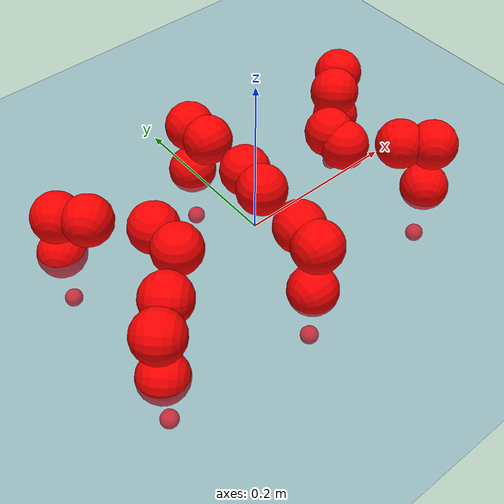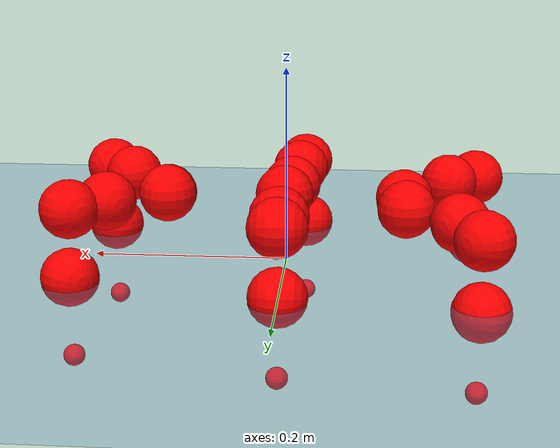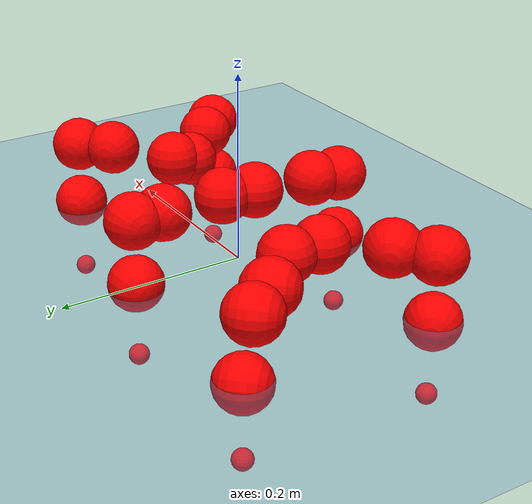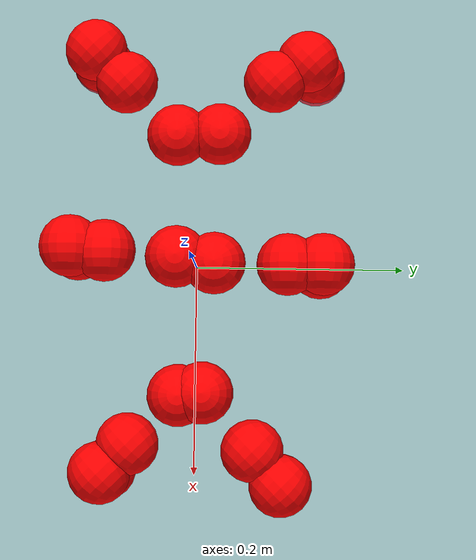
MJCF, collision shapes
<mujoco model="Golem">
  <compiler angle="radian" assetdir="assets" balanceinertia="true" inertiafromgeom="false"/>

  <option timestep="0.005" density="1.2" viscosity="2e-05"/>

  <size nkey="1"/>

  <visual>
    <quality shadowsize="8192"/>
    <map shadowclip="0.5"/>
  </visual>

  <default>
    <default class="/">
      <joint armature="0.01" damping="0.01" frictionloss="0.01"/>
      <geom contype="0" conaffinity="0" group="1" solref="-1000 -80"/>
      <site size="0.01 0.005 0.005" group="5"/>
      <general forcelimited="true" biastype="affine" gainprm="25" biasprm="0 -25 -0.5"/>
      <default class="visual">
        <geom type="mesh" group="2"/>
      </default>
      <default class="collision">
        <geom group="3"/>
      </default>
      <default class="foot">
        <geom size="0.01 0 0" condim="6" group="4" priority="1" solimp="0.015 1 0.01"/>
      </default>
      <default class="reward_collision_sphere">
        <geom group="5" rgba="1 0 0 1"/>
      </default>
    </default>
  </default>

  <asset>
    <texture type="skybox" colorspace="auto" name="//unnamed_texture_0" builtin="gradient" rgb1="0.95 0.95 0.95" rgb2="0.95 0.95 0.95" width="100" height="600"/>
    <texture type="2d" colorspace="auto" name="texplane" builtin="checker" rgb1="0.345 0.575 0.748" rgb2="0.345 0.575 0.748" markrgb="1 1 1" width="512" height="512"/>
    <material name="MatPlane" class="/" texture="texplane" texuniform="true" texrepeat="2 2" specular="0.9"/>
    <mesh name="body" class="/" file="body.stl" scale="0.001 0.001 0.001"/>
    <mesh name="coxa" class="/" file="coxa.stl" scale="0.001 0.001 0.001"/>
    <mesh name="femur" class="/" file="femur.stl" scale="0.001 0.001 0.001"/>
    <mesh name="tibia" class="/" file="tibia.stl" scale="0.001 0.001 0.001"/>
    <mesh name="tarsus" class="/" file="tarsus.stl" scale="0.001 0.001 0.001"/>
  </asset>

  <worldbody>
    <geom name="floor" class="/" size="100 100 0.125" type="plane" group="0" material="MatPlane"/>
    <light name="toplight_shadow" class="/" pos="0 0 5" dir="0.0990148 0.0990148 -0.990148" type="directional" ambient="0.04 0.04 0.04" diffuse="0.55 0.55 0.55" specular="0.12 0.12 0.12"/>
    <light name="toplight_fill" class="/" pos="0 0 5" dir="0.0990148 0.0990148 -0.990148" type="directional" castshadow="false" ambient="0.04 0.04 0.04" diffuse="0.3 0.3 0.3" specular="0.08 0.08 0.08"/>
    <body name="trunk" pos="-0.000777501 0.000732067 0.00257567" quat="0.999997 -0.000301825 -0.0023283 -0.000607628">
      <inertial pos="0.00289721 -0.00106368 -0.00372115" quat="0.999998 -0.00115146 -0.00152759 -0.000461271" mass="1.361" diaginertia="0.00293614 5.41468e-05 0.0134432"/>
      <joint name="//unnamed_joint_0" type="free"/>
      <geom name="//unnamed_geom_1" class="/" pos="0 0 0.0673438" quat="1 0 0 0" type="mesh" rgba="0.9 0.9 0.9 1" mesh="body"/>
      <site name="imu" class="/" pos="0.0806768 -0.00219353 0.101508" size="0.00726432"/>
      <camera name="track" class="/" pos="0 -0.701799 0" quat="0.707107 0.707107 0 0" mode="trackcom"/>
      <camera name="ego_camera" class="/" pos="0.1009 0 0.105225" quat="-0.5 -0.5 0.5 0.5"/>
      <body name="coxa_RR" pos="-0.135598 -0.0350391 0.0609781" quat="0.381467 0.00188973 -0.000476036 -0.924381">
        <inertial pos="-0.000210671 -2.39665e-05 -0.00150107" quat="0.999999 0.00103521 0.000149635 -0.000193509" mass="0.0725601" diaginertia="0.00277922 5.18869e-05 0.0125691"/>
        <joint name="coxa_joint_RR" class="/" pos="0 0 0" axis="0.00719238 -0.0116236 -0.999907" stiffness="0.00208885" range="-3.10751 3.20567" armature="0.00727539" damping="0" frictionloss="0.0073851"/>
        <geom name="//unnamed_geom_2" class="/" type="mesh" rgba="0.2 0.2 0.2 1" mesh="coxa"/>
        <geom name="//unnamed_geom_3" class="reward_collision_sphere" size="0.0290573" pos="-0.0232845 0 0"/>
        <body name="femur_RR" pos="0.0451082 0.000181492 0.00448996" quat="0.499264 -0.500448 0.499754 0.500533">
          <inertial pos="-0.00111716 0.000168196 -0.00251704" quat="0.999977 -3.4185e-05 -0.00621546 -0.00264628" mass="0.0766499" diaginertia="0.00283267 5.32274e-05 0.0123884"/>
          <joint name="femur_joint_RR" class="/" pos="0 0 0" axis="0.00206359 -0.00573164 -0.999981" range="-3.20475 3.14938" armature="0.00831361" damping="0.00492265" frictionloss="0.00640058"/>
          <geom name="//unnamed_geom_4" class="/" type="mesh" rgba="0.9 0.9 0.9 1" mesh="femur"/>
          <geom name="//unnamed_geom_5" class="reward_collision_sphere" size="0.0290573"/>
          <body name="tibia_RR" pos="0.00229437 -0.0426501 -0.000825837" quat="0.000257484 1 0.000276215 0.000310882">
            <inertial pos="-0.00178912 0.00059838 0.00140928" quat="0.999973 -0.00417181 -0.0023632 -0.00553935" mass="0.0747246" diaginertia="0.00273034 5.36457e-05 0.0132416"/>
            <joint name="tibia_joint_RR" class="/" pos="0 0 0" axis="0.0178917 -0.00121468 0.999839" stiffness="0.0044069" range="-3.21248 3.15217" armature="0.00788625" damping="0.0156354" frictionloss="0.00639272"/>
            <geom name="//unnamed_geom_6" class="/" type="mesh" rgba="0.2 0.2 0.2 1" mesh="tibia"/>
            <geom name="//unnamed_geom_7" class="reward_collision_sphere" size="0.0290573"/>
            <body name="tarsus_RR" pos="0.0705278 0.000550072 0.000981345" quat="0.999999 0.000535969 -0.000481816 0.000766709">
              <inertial pos="0.0490507 -0.00061946 0.00264751" quat="0.499743 0.50049 0.499631 0.500135" mass="0.0750755" diaginertia="0.00288095 5.34088e-05 0.0130416"/>
              <joint name="tarsus_joint_RR" class="/" pos="0 0 0" axis="-0.00810286 0.00714796 0.999942" range="-3.16581 3.09206" armature="0.00628966" damping="0.0076317" frictionloss="0.00818038"/>
              <geom name="//unnamed_geom_8" class="/" type="mesh" rgba="0.9 0.9 0.9 1" mesh="tarsus"/>
              <geom name="foot_1" class="foot" size="0.00774068" pos="0.086929 0 0" quat="0 -0.707107 0 0.707107"/>
              <geom name="//unnamed_geom_10" class="reward_collision_sphere" size="0.0290573"/>
              <geom name="//unnamed_geom_11" class="reward_collision_sphere" size="0.0108965" pos="0.0834363 0 0"/>
              <site name="foot_1" class="foot" pos="0.086929 0 0" quat="0 -0.707107 0 0.707107" size="0.00726432"/>
            </body>
          </body>
        </body>
      </body>
      <body name="coxa_RM" pos="-0.00405386 -0.0410228 0.0730132" quat="0.706574 0.000609798 -0.00126006 -0.707638">
        <inertial pos="0.00140132 0.00266162 0.00198632" quat="0.999973 0.00600024 -0.00140016 0.00395546" mass="0.0767284" diaginertia="0.00285838 5.10677e-05 0.0124906"/>
        <joint name="coxa_joint_RM" class="/" pos="0 0 0" axis="-0.00635206 -0.0120039 -0.999908" range="-3.12576 3.09904" armature="0.00574419" damping="0.0256785" frictionloss="0.00755181"/>
        <geom name="//unnamed_geom_12" class="/" type="mesh" rgba="0.2 0.2 0.2 1" mesh="coxa"/>
        <geom name="//unnamed_geom_13" class="reward_collision_sphere" size="0.0290573" pos="-0.0232845 0 0"/>
        <body name="femur_RM" pos="0.0432637 -0.00456143 -0.000316482" quat="0.500177 -0.499868 0.50002 0.499935">
          <inertial pos="-4.25723e-05 0.00179583 0.00134604" quat="0.999917 0.00544782 -0.000652962 -0.0116653" mass="0.0770586" diaginertia="0.00291682 5.13588e-05 0.0124635"/>
          <joint name="femur_joint_RM" class="/" pos="0 0 0" axis="0.0109048 -2.62219e-05 -0.999941" range="-3.16195 3.13303" armature="0.00676668" damping="0.00625977" frictionloss="0.00711341"/>
          <geom name="//unnamed_geom_14" class="/" type="mesh" rgba="0.9 0.9 0.9 1" mesh="femur"/>
          <geom name="//unnamed_geom_15" class="reward_collision_sphere" size="0.0290573"/>
          <body name="tibia_RM" pos="0.000526712 -0.0320836 -0.00393499" quat="0.00106209 0.999999 0.000193366 -0.000360075">
            <inertial pos="0.00196559 -0.00286999 0.00282758" quat="0.999933 0.00450738 -0.00525962 -0.00930131" mass="0.0758376" diaginertia="0.00271014 5.39552e-05 0.0125843"/>
            <joint name="tibia_joint_RM" class="/" pos="0 0 0" axis="-0.00252979 -0.00348714 0.999991" stiffness="0.00152217" range="-3.08929 3.10567" armature="0.00623776" damping="0.0116432" frictionloss="0.00565284"/>
            <geom name="//unnamed_geom_16" class="/" type="mesh" rgba="0.2 0.2 0.2 1" mesh="tibia"/>
            <geom name="//unnamed_geom_17" class="reward_collision_sphere" size="0.0290573"/>
            <body name="tarsus_RM" pos="0.0703855 -0.00051641 0.00155775" quat="1 -0.000106924 0.000161011 -0.000167558">
              <inertial pos="0.0464217 -0.0014871 -0.00112177" quat="0.498349 0.501554 0.500636 0.499455" mass="0.0793598" diaginertia="0.00286819 5.44892e-05 0.0129776"/>
              <joint name="tarsus_joint_RM" class="/" pos="0 0 0" axis="-0.00176898 -5.28194e-05 0.999998" range="-3.21338 3.16122" armature="0.00542923" damping="0.00162538" frictionloss="0.00757226"/>
              <geom name="//unnamed_geom_18" class="/" type="mesh" rgba="0.9 0.9 0.9 1" mesh="tarsus"/>
              <geom name="foot_2" class="foot" size="0.00635093" pos="0.086929 0 0" quat="0 -0.707107 0 0.707107"/>
              <geom name="//unnamed_geom_20" class="reward_collision_sphere" size="0.0290573"/>
              <geom name="//unnamed_geom_21" class="reward_collision_sphere" size="0.0108965" pos="0.0834363 0 0"/>
              <site name="foot_2" class="foot" pos="0.086929 0 0" quat="0 -0.707107 0 0.707107" size="0.00726432"/>
            </body>
          </body>
        </body>
      </body>
      <body name="coxa_RF" pos="0.140623 -0.030771 0.062015" quat="0.923895 8.04346e-05 1.92646e-05 -0.382647">
        <inertial pos="0.0011421 0.00505039 0.000175072" quat="0.999992 0.00339899 -0.000731959 0.00191602" mass="0.0735453" diaginertia="0.00276211 5.43181e-05 0.0127653"/>
        <joint name="coxa_joint_RF" class="/" pos="0 0 0" axis="3.97293e-05 -0.000605666 -1" range="-3.1723 3.07135" armature="0.00719883" damping="0.0268263" frictionloss="0.00648688"/>
        <geom name="//unnamed_geom_22" class="/" type="mesh" rgba="0.2 0.2 0.2 1" mesh="coxa"/>
        <geom name="//unnamed_geom_23" class="reward_collision_sphere" size="0.0290573" pos="-0.0232845 0 0"/>
        <body name="femur_RF" pos="0.0408893 -0.000353528 0.00692951" quat="0.500741 -0.500498 0.499981 0.498777">
          <inertial pos="0.00156364 0.000935084 -0.00328993" quat="0.999826 -0.00797864 -0.0167406 0.00190024" mass="0.0748287" diaginertia="0.00283898 5.62129e-05 0.0125882"/>
          <joint name="femur_joint_RF" class="/" pos="0 0 0" axis="-0.00252473 0.0101773 -0.999945" stiffness="0.00732751" range="-3.1507 3.1373" armature="0.00802768" damping="0.00152194" frictionloss="0.00840903"/>
          <geom name="//unnamed_geom_24" class="/" type="mesh" rgba="0.9 0.9 0.9 1" mesh="femur"/>
          <geom name="//unnamed_geom_25" class="reward_collision_sphere" size="0.0290573"/>
          <body name="tibia_RF" pos="-0.00080128 -0.0369854 0.000887118" quat="0.00019257 1 0.000410345 -0.000132292">
            <inertial pos="2.4047e-05 0.000764467 -0.00188481" quat="0.999998 -0.000993576 -0.00147136 0.00109666" mass="0.0759745" diaginertia="0.00278755 5.15265e-05 0.0120997"/>
            <joint name="tibia_joint_RF" class="/" pos="0 0 0" axis="0.0131167 0.000165008 0.999914" range="-3.19183 3.14948" armature="0.00645392" damping="0.0160948" frictionloss="0.00724202"/>
            <geom name="//unnamed_geom_26" class="/" type="mesh" rgba="0.2 0.2 0.2 1" mesh="tibia"/>
            <geom name="//unnamed_geom_27" class="reward_collision_sphere" size="0.0290573"/>
            <body name="tarsus_RF" pos="0.0670848 -0.000530225 -0.000606649" quat="0.999999 0.00100771 0.000595986 -0.000999604">
              <inertial pos="0.0500455 -0.000229441 -0.00467145" quat="0.499242 0.495985 0.502742 0.502003" mass="0.0794291" diaginertia="0.00282182 5.39039e-05 0.0136421"/>
              <joint name="tarsus_joint_RF" class="/" pos="0 0 0" axis="-0.0121154 0.0145193 0.999821" range="-3.215 3.18988" armature="0.0071449" damping="0.0109022" frictionloss="0.00712187"/>
              <geom name="//unnamed_geom_28" class="/" type="mesh" rgba="0.9 0.9 0.9 1" mesh="tarsus"/>
              <geom name="foot_3" class="foot" size="0.00789391" pos="0.086929 0 0" quat="0 -0.707107 0 0.707107"/>
              <geom name="//unnamed_geom_30" class="reward_collision_sphere" size="0.0290573"/>
              <geom name="//unnamed_geom_31" class="reward_collision_sphere" size="0.0108965" pos="0.0834363 0 0"/>
              <site name="foot_3" class="foot" pos="0.086929 0 0" quat="0 -0.707107 0 0.707107" size="0.00726432"/>
            </body>
          </body>
        </body>
      </body>
      <body name="coxa_LR" pos="-0.136953 0.037603 0.0612508" quat="0.383344 0.000345639 -0.00144152 0.923604">
        <inertial pos="-0.00284346 -0.000488508 -3.19501e-05" quat="0.999977 0.00476677 0.00295766 -0.00392879" mass="0.0772778" diaginertia="0.00292902 5.34333e-05 0.0129581"/>
        <joint name="coxa_joint_LR" class="/" pos="0 0 0" axis="-0.0173778 0.00733804 -0.999822" range="-3.19143 3.17246" armature="0.00651139" damping="0.0325965" frictionloss="0.00738521"/>
        <geom name="//unnamed_geom_32" class="/" type="mesh" rgba="0.2 0.2 0.2 1" mesh="coxa"/>
        <geom name="//unnamed_geom_33" class="reward_collision_sphere" size="0.0290573" pos="-0.0232845 0 0"/>
        <body name="femur_LR" pos="0.0474646 -0.000335689 0.0034738" quat="0.498993 -0.500061 0.501041 0.499903">
          <inertial pos="0.00225637 -0.0021606 0.00081725" quat="0.999999 -0.00100757 -0.000764344 0.000499804" mass="0.0728638" diaginertia="0.00276004 5.24112e-05 0.0128481"/>
          <joint name="femur_joint_LR" class="/" pos="0 0 0" axis="0.000265928 -9.51305e-06 1" stiffness="0.0099422" range="-3.1154 3.03983" armature="0.00673511" damping="0.0164618" frictionloss="0.00563953"/>
          <geom name="//unnamed_geom_34" class="/" type="mesh" rgba="0.9 0.9 0.9 1" mesh="femur"/>
          <geom name="//unnamed_geom_35" class="reward_collision_sphere" size="0.0290573"/>
          <body name="tibia_LR" pos="0.00638442 -0.0364874 -0.00726803" quat="-0.000406587 0.999999 -0.000731395 0.000956682">
            <inertial pos="0.00271845 -0.00328939 0.00354574" quat="0.99992 8.47058e-05 -0.0039358 0.0120174" mass="0.073438" diaginertia="0.00272424 5.10421e-05 0.0124563"/>
            <joint name="tibia_joint_LR" class="/" pos="0 0 0" axis="-0.000167369 0.00836894 -0.999965" range="-3.09064 3.19221" armature="0.00863363" damping="0" frictionloss="0.00692999"/>
            <geom name="//unnamed_geom_36" class="/" type="mesh" rgba="0.2 0.2 0.2 1" mesh="tibia"/>
            <geom name="//unnamed_geom_37" class="reward_collision_sphere" size="0.0290573"/>
            <body name="tarsus_LR" pos="0.0676667 0.00703775 0.0071191" quat="0.999999 0.000248949 0.000212505 -0.00107778">
              <inertial pos="0.0482844 -0.000654131 -0.0017017" quat="0.500188 0.500388 0.498018 0.5014" mass="0.0782796" diaginertia="0.00289266 5.35844e-05 0.0133191"/>
              <joint name="tarsus_joint_LR" class="/" pos="0 0 0" axis="0.00194177 -0.0121712 -0.999924" stiffness="0.000237221" range="-3.20632 3.15133" armature="0.00730866" damping="0.0328553" frictionloss="0.00810446"/>
              <geom name="//unnamed_geom_38" class="/" type="mesh" rgba="0.9 0.9 0.9 1" mesh="tarsus"/>
              <geom name="foot_4" class="foot" size="0.00797792" pos="0.086929 0 0" quat="0.707107 0 -0.707107 0"/>
              <geom name="//unnamed_geom_40" class="reward_collision_sphere" size="0.0290573"/>
              <geom name="//unnamed_geom_41" class="reward_collision_sphere" size="0.0108965" pos="0.0834363 0 0"/>
              <site name="foot_4" class="foot" pos="0.086929 0 0" quat="0.707107 0 -0.707107 0" size="0.00726432"/>
            </body>
          </body>
        </body>
      </body>
      <body name="coxa_LM" pos="0.00160357 0.0408459 0.0728017" quat="0.707322 -0.00109915 -0.00222461 0.706887">
        <inertial pos="-0.00178846 0.000251065 0.000263804" quat="0.999953 -0.00694211 -0.00314577 0.00596636" mass="0.0698665" diaginertia="0.0024952 4.96837e-05 0.0123156"/>
        <joint name="coxa_joint_LM" class="/" pos="0 0 0" axis="-0.00176735 0.00197388 -0.999996" range="-3.1021 3.08838" armature="0.00747124" damping="0.0133993" frictionloss="0.00671693"/>
        <geom name="//unnamed_geom_42" class="/" type="mesh" rgba="0.2 0.2 0.2 1" mesh="coxa"/>
        <geom name="//unnamed_geom_43" class="reward_collision_sphere" size="0.0290573" pos="-0.0232845 0 0"/>
        <body name="femur_LM" pos="0.0447915 -0.000169665 -0.00169325" quat="0.499989 -0.500011 0.500009 0.499992">
          <inertial pos="0.000823872 0.000849102 0.0010262" quat="0.999998 -0.00150823 -0.000953523 -5.93597e-05" mass="0.0814907" diaginertia="0.00287182 5.6101e-05 0.013661"/>
          <joint name="femur_joint_LM" class="/" pos="0 0 0" axis="-0.00644987 0.00295684 0.999975" stiffness="0.008465" range="-3.08822 3.10639" armature="0.00683632" damping="0.00348132" frictionloss="0.00726478"/>
          <geom name="//unnamed_geom_44" class="/" type="mesh" rgba="0.9 0.9 0.9 1" mesh="femur"/>
          <geom name="//unnamed_geom_45" class="reward_collision_sphere" size="0.0290573"/>
          <body name="tibia_LM" pos="0.000470206 -0.0332818 0.000736193" quat="3.40402e-05 0.999999 0.00108732 2.97786e-05">
            <inertial pos="0.00389342 -0.00513369 0.0017624" quat="1 9.19343e-05 0.000139609 -7.58268e-05" mass="0.0776477" diaginertia="0.00297529 5.49381e-05 0.0135969"/>
            <joint name="tibia_joint_LM" class="/" pos="0 0 0" axis="0.00187103 0.00369583 -0.999991" stiffness="0.011955" range="-3.15867 3.13055" armature="0.00749086" damping="0.00449131" frictionloss="0.00703443"/>
            <geom name="//unnamed_geom_46" class="/" type="mesh" rgba="0.2 0.2 0.2 1" mesh="tibia"/>
            <geom name="//unnamed_geom_47" class="reward_collision_sphere" size="0.0290573"/>
            <body name="tarsus_LM" pos="0.0689761 -0.000180936 -0.000713564" quat="1 -0.000231098 -0.000487246 -0.000334254">
              <inertial pos="0.0451206 -0.00158188 0.00025396" quat="0.506711 0.495105 0.502506 0.495583" mass="0.0789709" diaginertia="0.002965 5.46567e-05 0.0129939"/>
              <joint name="tarsus_joint_LM" class="/" pos="0 0 0" axis="0.00557881 0.00613945 -0.999966" range="-3.09077 3.15511" armature="0.00717282" damping="0" frictionloss="0.00791096"/>
              <geom name="//unnamed_geom_48" class="/" type="mesh" rgba="0.9 0.9 0.9 1" mesh="tarsus"/>
              <geom name="foot_5" class="foot" size="0.00796578" pos="0.086929 0 0" quat="0.707107 0 -0.707107 0"/>
              <geom name="//unnamed_geom_50" class="reward_collision_sphere" size="0.0290573"/>
              <geom name="//unnamed_geom_51" class="reward_collision_sphere" size="0.0108965" pos="0.0834363 0 0"/>
              <site name="foot_5" class="foot" pos="0.086929 0 0" quat="0.707107 0 -0.707107 0" size="0.00726432"/>
            </body>
          </body>
        </body>
      </body>
      <body name="coxa_LF" pos="0.138029 0.0244638 0.0679544" quat="0.923915 0.00054903 8.41192e-05 0.382598">
        <inertial pos="-0.00251636 0.000793571 -0.00152763" quat="0.999917 0.00876546 -0.00858174 0.00387764" mass="0.0779194" diaginertia="0.00286368 5.56096e-05 0.0132309"/>
        <joint name="coxa_joint_LF" class="/" pos="0 0 0" axis="0.00544564 0.00100228 -0.999985" stiffness="0.00198541" range="-3.13018 3.09591" armature="0.00705114" damping="0.0084921" frictionloss="0.00762466"/>
        <geom name="//unnamed_geom_52" class="/" type="mesh" rgba="0.2 0.2 0.2 1" mesh="coxa"/>
        <geom name="//unnamed_geom_53" class="reward_collision_sphere" size="0.0290573" pos="-0.0232845 0 0"/>
        <body name="femur_LF" pos="0.0470253 -0.00391654 0.00466862" quat="0.499991 -0.499994 0.50004 0.499975">
          <inertial pos="0.000443186 0.00110501 -0.00248278" quat="0.999731 -0.000173314 -0.0171116 -0.0156585" mass="0.0771673" diaginertia="0.00275636 5.58106e-05 0.0129735"/>
          <joint name="femur_joint_LF" class="/" pos="0 0 0" axis="-0.00355439 0.00113796 0.999993" range="-3.12399 3.11034" armature="0.00668577" damping="0" frictionloss="0.00908593"/>
          <geom name="//unnamed_geom_54" class="/" type="mesh" rgba="0.9 0.9 0.9 1" mesh="femur"/>
          <geom name="//unnamed_geom_55" class="reward_collision_sphere" size="0.0290573"/>
          <body name="tibia_LF" pos="0.00124056 -0.0408476 -0.00362217" quat="0.000122802 1 8.69694e-05 -0.000193433">
            <inertial pos="0.00172574 -0.000885402 0.000926362" quat="0.999985 0.00253963 -0.00478368 -0.00120551" mass="0.0768835" diaginertia="0.00274289 5.27081e-05 0.0128103"/>
            <joint name="tibia_joint_LF" class="/" pos="0 0 0" axis="0.00407357 0.00102668 -0.999991" range="-3.05295 3.15959" armature="0.00762733" damping="0" frictionloss="0.00737098"/>
            <geom name="//unnamed_geom_56" class="/" type="mesh" rgba="0.2 0.2 0.2 1" mesh="tibia"/>
            <geom name="//unnamed_geom_57" class="reward_collision_sphere" size="0.0290573"/>
            <body name="tarsus_LF" pos="0.069998 0.00219315 0.00130136" quat="1 -4.15907e-05 0.000110063 -0.000123066">
              <inertial pos="0.0455929 -0.000556455 -0.00411788" quat="0.497255 0.502882 0.499553 0.500294" mass="0.0724172" diaginertia="0.00282941 5.17346e-05 0.0128802"/>
              <joint name="tarsus_joint_LF" class="/" pos="0 0 0" axis="0.00493781 -0.00315098 -0.999983" stiffness="0.0246031" range="-3.14675 3.14712" armature="0.00716056" damping="0.0385899" frictionloss="0.0080584"/>
              <geom name="//unnamed_geom_58" class="/" type="mesh" rgba="0.9 0.9 0.9 1" mesh="tarsus"/>
              <geom name="foot_6" class="foot" size="0.00738184" pos="0.086929 0 0" quat="0.707107 0 -0.707107 0"/>
              <geom name="//unnamed_geom_60" class="reward_collision_sphere" size="0.0290573"/>
              <geom name="//unnamed_geom_61" class="reward_collision_sphere" size="0.0108965" pos="0.0834363 0 0"/>
              <site name="foot_6" class="foot" pos="0.086929 0 0" quat="0.707107 0 -0.707107 0" size="0.00726432"/>
            </body>
          </body>
        </body>
      </body>
    </body>
  </worldbody>

  <contact>
    <pair class="/" geom1="floor" geom2="foot_1" name="//unnamed_contact_0"/>
    <pair class="/" geom1="floor" geom2="foot_2" name="//unnamed_contact_1"/>
    <pair class="/" geom1="floor" geom2="foot_3" name="//unnamed_contact_2"/>
    <pair class="/" geom1="floor" geom2="foot_4" name="//unnamed_contact_3"/>
    <pair class="/" geom1="floor" geom2="foot_5" name="//unnamed_contact_4"/>
    <pair class="/" geom1="floor" geom2="foot_6" name="//unnamed_contact_5"/>
  </contact>

  <actuator>
    <general name="coxa_joint_RR" class="/" joint="coxa_joint_RR" forcerange="-5.1421 5.1421" gainprm="20.1161" biasprm="0 -20.1161 -0.402231"/>
    <general name="femur_joint_RR" class="/" joint="femur_joint_RR" forcerange="-5.6357 5.6357" gainprm="20.1161" biasprm="0 -20.1161 -0.402231"/>
    <general name="tibia_joint_RR" class="/" joint="tibia_joint_RR" forcerange="-4.79158 4.79158" gainprm="20.1161" biasprm="0 -20.1161 -0.402231"/>
    <general name="tarsus_joint_RR" class="/" joint="tarsus_joint_RR" forcerange="-5.80892 5.80892" gainprm="20.1161" biasprm="0 -20.1161 -0.402231"/>
    <general name="coxa_joint_RM" class="/" joint="coxa_joint_RM" forcerange="-5.11467 5.11467" gainprm="20.1161" biasprm="0 -20.1161 -0.402231"/>
    <general name="femur_joint_RM" class="/" joint="femur_joint_RM" forcerange="-4.9029 4.9029" gainprm="20.1161" biasprm="0 -20.1161 -0.402231"/>
    <general name="tibia_joint_RM" class="/" joint="tibia_joint_RM" forcerange="-4.9976 4.9976" gainprm="20.1161" biasprm="0 -20.1161 -0.402231"/>
    <general name="tarsus_joint_RM" class="/" joint="tarsus_joint_RM" forcerange="-4.4345 4.4345" gainprm="20.1161" biasprm="0 -20.1161 -0.402231"/>
    <general name="coxa_joint_RF" class="/" joint="coxa_joint_RF" forcerange="-4.69352 4.69352" gainprm="20.1161" biasprm="0 -20.1161 -0.402231"/>
    <general name="femur_joint_RF" class="/" joint="femur_joint_RF" forcerange="-5.92519 5.92519" gainprm="20.1161" biasprm="0 -20.1161 -0.402231"/>
    <general name="tibia_joint_RF" class="/" joint="tibia_joint_RF" forcerange="-4.94953 4.94953" gainprm="20.1161" biasprm="0 -20.1161 -0.402231"/>
    <general name="tarsus_joint_RF" class="/" joint="tarsus_joint_RF" forcerange="-5.49618 5.49618" gainprm="20.1161" biasprm="0 -20.1161 -0.402231"/>
    <general name="coxa_joint_LR" class="/" joint="coxa_joint_LR" forcerange="-5.5403 5.5403" gainprm="20.1161" biasprm="0 -20.1161 -0.402231"/>
    <general name="femur_joint_LR" class="/" joint="femur_joint_LR" forcerange="-5.40381 5.40381" gainprm="20.1161" biasprm="0 -20.1161 -0.402231"/>
    <general name="tibia_joint_LR" class="/" joint="tibia_joint_LR" forcerange="-4.97269 4.97269" gainprm="20.1161" biasprm="0 -20.1161 -0.402231"/>
    <general name="tarsus_joint_LR" class="/" joint="tarsus_joint_LR" forcerange="-4.87818 4.87818" gainprm="20.1161" biasprm="0 -20.1161 -0.402231"/>
    <general name="coxa_joint_LM" class="/" joint="coxa_joint_LM" forcerange="-5.22605 5.22605" gainprm="20.1161" biasprm="0 -20.1161 -0.402231"/>
    <general name="femur_joint_LM" class="/" joint="femur_joint_LM" forcerange="-5.27663 5.27663" gainprm="20.1161" biasprm="0 -20.1161 -0.402231"/>
    <general name="tibia_joint_LM" class="/" joint="tibia_joint_LM" forcerange="-6.15507 6.15507" gainprm="20.1161" biasprm="0 -20.1161 -0.402231"/>
    <general name="tarsus_joint_LM" class="/" joint="tarsus_joint_LM" forcerange="-5.31086 5.31086" gainprm="20.1161" biasprm="0 -20.1161 -0.402231"/>
    <general name="coxa_joint_LF" class="/" joint="coxa_joint_LF" forcerange="-4.88417 4.88417" gainprm="20.1161" biasprm="0 -20.1161 -0.402231"/>
    <general name="femur_joint_LF" class="/" joint="femur_joint_LF" forcerange="-4.82145 4.82145" gainprm="20.1161" biasprm="0 -20.1161 -0.402231"/>
    <general name="tibia_joint_LF" class="/" joint="tibia_joint_LF" forcerange="-5.38013 5.38013" gainprm="20.1161" biasprm="0 -20.1161 -0.402231"/>
    <general name="tarsus_joint_LF" class="/" joint="tarsus_joint_LF" forcerange="-4.80374 4.80374" gainprm="20.1161" biasprm="0 -20.1161 -0.402231"/>
  </actuator>

  <sensor>
    <gyro site="imu" name="imu_angular_velocity"/>
    <velocimeter site="imu" name="imu_linear_velocity"/>
    <framelinvel objtype="site" objname="foot_1" name="foot_1_global_linear_velocity"/>
    <framelinvel objtype="site" objname="foot_2" name="foot_2_global_linear_velocity"/>
    <framelinvel objtype="site" objname="foot_3" name="foot_3_global_linear_velocity"/>
    <framelinvel objtype="site" objname="foot_4" name="foot_4_global_linear_velocity"/>
    <framelinvel objtype="site" objname="foot_5" name="foot_5_global_linear_velocity"/>
    <framelinvel objtype="site" objname="foot_6" name="foot_6_global_linear_velocity"/>
  </sensor>

  <keyframe>
    <key name="home" qpos="0 0 0.1457 1 0 0 0 0 0 0 0 0 0 0 0 0 0 0 0 0 0 0 0 0 0 0 0 0 0 0 0"/>
  </keyframe>
</mujoco>
